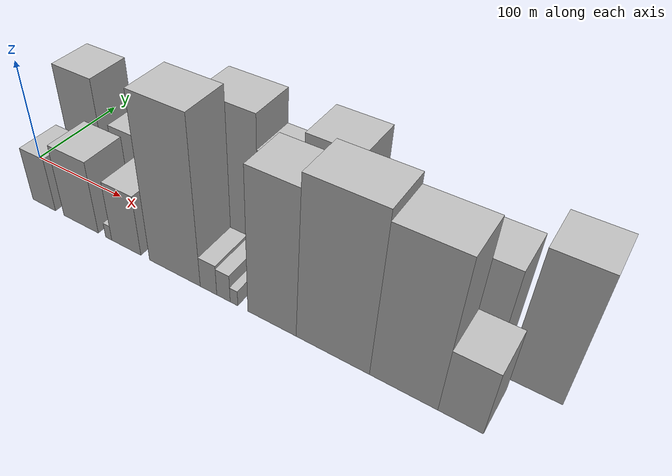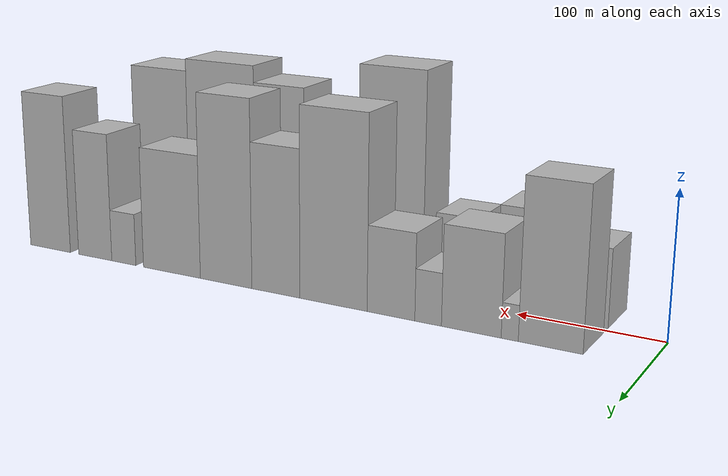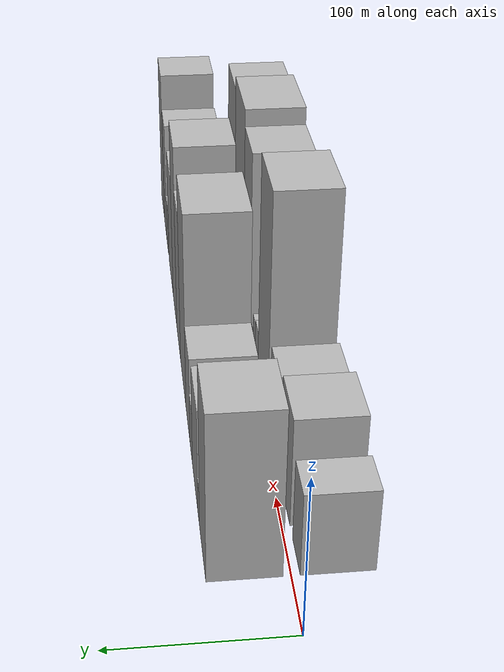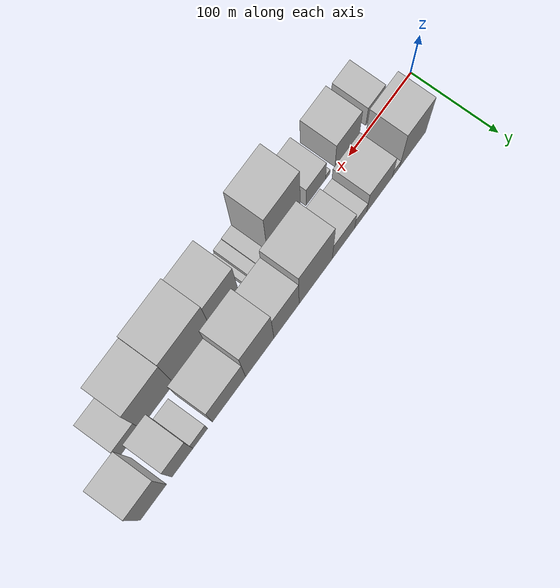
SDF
<sdf version="1.6">
 <world name="default">
  <scene>
   <sky><clouds><speed>12</speed></clouds></sky>
   <ambient>0.4 0.4 0.4 1</ambient>
   <background>0.7 0.7 0.7 1</background>
   <shadows>1</shadows>
  </scene>
  <gravity>0 0 -9.8066</gravity>
  <magnetic_field>6e-06 2.3e-05 -4.2e-05</magnetic_field>
  <physics default="0" name="default_physics" type="ode">
   <ode>
    <solver>
     <type>quick</type>
     <iters>10</iters>
     <sor>1.0</sor>
     <use_dynamic_moi_rescaling>0</use_dynamic_moi_rescaling>
    </solver>
    <constraints>
     <cfm>0</cfm>
     <erp>0.2</erp>
     <contact_max_correcting_vel>100</contact_max_correcting_vel>
     <contact_surface_layer>0.001</contact_surface_layer>
    </constraints>
   </ode>
   <max_step_size>0.004</max_step_size>
   <real_time_factor>1</real_time_factor>
   <real_time_update_rate>250</real_time_update_rate>
  </physics>
  <light name="sun" type="directional">
   <pose>0 0 10 0 0 0</pose>
   <diffuse>0.8 0.8 0.8 1</diffuse>
   <specular>0.2 0.2 0.2 1</specular>
   <attenuation>
    <range>1000</range>
    <constant>0.9</constant>
    <linear>0.01</linear>
    <quadratic>0.001</quadratic>
   </attenuation>
   <direction>-0.5 0.1 -0.9</direction>
  </light>
  <model name="building_1">
   <static>1</static>
   <pose>61.0393 24.5000 0 0.000000 0.000000 1.570796</pose>
   <link name="link">
    <pose>0 0 54.00 0 0 0</pose>
    <collision name="collision"><geometry><box><size>40.0000 42.0786 108.0000</size></box></geometry></collision>
    <visual name="visual">
     <cast_shadows>0</cast_shadows>
     <geometry><box><size>40.0000 42.0786 108.0000</size></box></geometry>
     <material>
      <script>
       <uri>model://HANNAS_wall/materials/scripts</uri>
       <uri>model://HANNAS_wall/materials/textures</uri>
       <name>vrc/HANNAS_wall</name>
      </script>
     </material>
    </visual>
   </link>
  </model>
  <model name="building_2">
   <static>1</static>
   <pose>87.7988 24.5000 0 0.000000 0.000000 1.570796</pose>
   <link name="link">
    <pose>0 0 12.00 0 0 0</pose>
    <collision name="collision"><geometry><box><size>40.0000 11.4404 24.0000</size></box></geometry></collision>
    <visual name="visual">
     <cast_shadows>0</cast_shadows>
     <geometry><box><size>40.0000 11.4404 24.0000</size></box></geometry>
     <material>
      <script>
       <uri>model://HANNAS_wall/materials/scripts</uri>
       <uri>model://HANNAS_wall/materials/textures</uri>
       <name>vrc/HANNAS_wall</name>
      </script>
     </material>
    </visual>
   </link>
  </model>
  <model name="building_3">
   <static>1</static>
   <pose>114.1051 24.5000 0 0.000000 0.000000 1.570796</pose>
   <link name="link">
    <pose>0 0 34.50 0 0 0</pose>
    <collision name="collision"><geometry><box><size>40.0000 41.1723 69.0000</size></box></geometry></collision>
    <visual name="visual">
     <cast_shadows>0</cast_shadows>
     <geometry><box><size>40.0000 41.1723 69.0000</size></box></geometry>
     <material>
      <script>
       <uri>model://HANNAS_wall/materials/scripts</uri>
       <uri>model://HANNAS_wall/materials/textures</uri>
       <name>vrc/HANNAS_wall</name>
      </script>
     </material>
    </visual>
   </link>
  </model>
  <model name="building_4">
   <static>1</static>
   <pose>144.1819 24.5000 0 0.000000 0.000000 1.570796</pose>
   <link name="link">
    <pose>0 0 18.00 0 0 0</pose>
    <collision name="collision"><geometry><box><size>40.0000 18.9814 36.0000</size></box></geometry></collision>
    <visual name="visual">
     <cast_shadows>0</cast_shadows>
     <geometry><box><size>40.0000 18.9814 36.0000</size></box></geometry>
     <material>
      <script>
       <uri>model://HANNAS_wall/materials/scripts</uri>
       <uri>model://HANNAS_wall/materials/textures</uri>
       <name>vrc/HANNAS_wall</name>
      </script>
     </material>
    </visual>
   </link>
  </model>
  <model name="building_5">
   <static>1</static>
   <pose>171.2053 24.5000 0 0.000000 0.000000 1.570796</pose>
   <link name="link">
    <pose>0 0 30.00 0 0 0</pose>
    <collision name="collision"><geometry><box><size>40.0000 35.0654 60.0000</size></box></geometry></collision>
    <visual name="visual">
     <cast_shadows>0</cast_shadows>
     <geometry><box><size>40.0000 35.0654 60.0000</size></box></geometry>
     <material>
      <script>
       <uri>model://HANNAS_wall/materials/scripts</uri>
       <uri>model://HANNAS_wall/materials/textures</uri>
       <name>vrc/HANNAS_wall</name>
      </script>
     </material>
    </visual>
   </link>
  </model>
  <model name="building_6">
   <static>1</static>
   <pose>214.6313 24.5000 0 0.000000 0.000000 1.570796</pose>
   <link name="link">
    <pose>0 0 67.50 0 0 0</pose>
    <collision name="collision"><geometry><box><size>40.0000 51.7867 135.0000</size></box></geometry></collision>
    <visual name="visual">
     <cast_shadows>0</cast_shadows>
     <geometry><box><size>40.0000 51.7867 135.0000</size></box></geometry>
     <material>
      <script>
       <uri>model://HANNAS_wall/materials/scripts</uri>
       <uri>model://HANNAS_wall/materials/textures</uri>
       <name>vrc/HANNAS_wall</name>
      </script>
     </material>
    </visual>
   </link>
  </model>
  <model name="building_7">
   <static>1</static>
   <pose>259.8785 24.5000 0 0.000000 0.000000 1.570796</pose>
   <link name="link">
    <pose>0 0 52.50 0 0 0</pose>
    <collision name="collision"><geometry><box><size>40.0000 38.7076 105.0000</size></box></geometry></collision>
    <visual name="visual">
     <cast_shadows>0</cast_shadows>
     <geometry><box><size>40.0000 38.7076 105.0000</size></box></geometry>
     <material>
      <script>
       <uri>model://HANNAS_wall/materials/scripts</uri>
       <uri>model://HANNAS_wall/materials/textures</uri>
       <name>vrc/HANNAS_wall</name>
      </script>
     </material>
    </visual>
   </link>
  </model>
  <model name="building_8">
   <static>1</static>
   <pose>300.9678 24.5000 0 0.000000 0.000000 1.570796</pose>
   <link name="link">
    <pose>0 0 67.50 0 0 0</pose>
    <collision name="collision"><geometry><box><size>40.0000 43.4711 135.0000</size></box></geometry></collision>
    <visual name="visual">
     <cast_shadows>0</cast_shadows>
     <geometry><box><size>40.0000 43.4711 135.0000</size></box></geometry>
     <material>
      <script>
       <uri>model://HANNAS_wall/materials/scripts</uri>
       <uri>model://HANNAS_wall/materials/textures</uri>
       <name>vrc/HANNAS_wall</name>
      </script>
     </material>
    </visual>
   </link>
  </model>
  <model name="building_9">
   <static>1</static>
   <pose>347.8488 24.5000 0 0.000000 0.000000 1.570796</pose>
   <link name="link">
    <pose>0 0 45.00 0 0 0</pose>
    <collision name="collision"><geometry><box><size>40.0000 50.2910 90.0000</size></box></geometry></collision>
    <visual name="visual">
     <cast_shadows>0</cast_shadows>
     <geometry><box><size>40.0000 50.2910 90.0000</size></box></geometry>
     <material>
      <script>
       <uri>model://HANNAS_wall/materials/scripts</uri>
       <uri>model://HANNAS_wall/materials/textures</uri>
       <name>vrc/HANNAS_wall</name>
      </script>
     </material>
    </visual>
   </link>
  </model>
  <model name="building_10">
   <static>1</static>
   <pose>391.0705 24.5000 0 0.000000 0.000000 1.570796</pose>
   <link name="link">
    <pose>0 0 19.50 0 0 0</pose>
    <collision name="collision"><geometry><box><size>40.0000 22.1524 39.0000</size></box></geometry></collision>
    <visual name="visual">
     <cast_shadows>0</cast_shadows>
     <geometry><box><size>40.0000 22.1524 39.0000</size></box></geometry>
     <material>
      <script>
       <uri>model://HANNAS_wall/materials/scripts</uri>
       <uri>model://HANNAS_wall/materials/textures</uri>
       <name>vrc/HANNAS_wall</name>
      </script>
     </material>
    </visual>
   </link>
  </model>
  <model name="building_11">
   <static>1</static>
   <pose>417.8447 24.5000 0 0.000000 0.000000 1.570796</pose>
   <link name="link">
    <pose>0 0 48.00 0 0 0</pose>
    <collision name="collision"><geometry><box><size>40.0000 31.3960 96.0000</size></box></geometry></collision>
    <visual name="visual">
     <cast_shadows>0</cast_shadows>
     <geometry><box><size>40.0000 31.3960 96.0000</size></box></geometry>
     <material>
      <script>
       <uri>model://HANNAS_wall/materials/scripts</uri>
       <uri>model://HANNAS_wall/materials/textures</uri>
       <name>vrc/HANNAS_wall</name>
      </script>
     </material>
    </visual>
   </link>
  </model>
  <model name="building_12">
   <static>1</static>
   <pose>461.0746 24.5000 0 0.000000 0.000000 1.570796</pose>
   <link name="link">
    <pose>0 0 60.00 0 0 0</pose>
    <collision name="collision"><geometry><box><size>40.0000 39.0637 120.0000</size></box></geometry></collision>
    <visual name="visual">
     <cast_shadows>0</cast_shadows>
     <geometry><box><size>40.0000 39.0637 120.0000</size></box></geometry>
     <material>
      <script>
       <uri>model://HANNAS_wall/materials/scripts</uri>
       <uri>model://HANNAS_wall/materials/textures</uri>
       <name>vrc/HANNAS_wall</name>
      </script>
     </material>
    </visual>
   </link>
  </model>
  <model name="building_13">
   <static>1</static>
   <pose>53.6402 -24.5000 0 0.000000 0.000000 1.570796</pose>
   <link name="link">
    <pose>0 0 27.00 0 0 0</pose>
    <collision name="collision"><geometry><box><size>40.0000 27.2803 54.0000</size></box></geometry></collision>
    <visual name="visual">
     <cast_shadows>0</cast_shadows>
     <geometry><box><size>40.0000 27.2803 54.0000</size></box></geometry>
     <material>
      <script>
       <uri>model://HANNAS_wall/materials/scripts</uri>
       <uri>model://HANNAS_wall/materials/textures</uri>
       <name>vrc/HANNAS_wall</name>
      </script>
     </material>
    </visual>
   </link>
  </model>
  <model name="building_14">
   <static>1</static>
   <pose>96.8965 -24.5000 0 0.000000 0.000000 1.570796</pose>
   <link name="link">
    <pose>0 0 36.00 0 0 0</pose>
    <collision name="collision"><geometry><box><size>40.0000 39.2323 72.0000</size></box></geometry></collision>
    <visual name="visual">
     <cast_shadows>0</cast_shadows>
     <geometry><box><size>40.0000 39.2323 72.0000</size></box></geometry>
     <material>
      <script>
       <uri>model://HANNAS_wall/materials/scripts</uri>
       <uri>model://HANNAS_wall/materials/textures</uri>
       <name>vrc/HANNAS_wall</name>
      </script>
     </material>
    </visual>
   </link>
  </model>
  <model name="building_15">
   <static>1</static>
   <pose>127.9105 -24.5000 0 0.000000 0.000000 1.570796</pose>
   <link name="link">
    <pose>0 0 7.50 0 0 0</pose>
    <collision name="collision"><geometry><box><size>40.0000 6.7958 15.0000</size></box></geometry></collision>
    <visual name="visual">
     <cast_shadows>0</cast_shadows>
     <geometry><box><size>40.0000 6.7958 15.0000</size></box></geometry>
     <material>
      <script>
       <uri>model://HANNAS_wall/materials/scripts</uri>
       <uri>model://HANNAS_wall/materials/textures</uri>
       <name>vrc/HANNAS_wall</name>
      </script>
     </material>
    </visual>
   </link>
  </model>
  <model name="building_16">
   <static>1</static>
   <pose>146.7955 -24.5000 0 0.000000 0.000000 1.570796</pose>
   <link name="link">
    <pose>0 0 30.00 0 0 0</pose>
    <collision name="collision"><geometry><box><size>40.0000 30.9742 60.0000</size></box></geometry></collision>
    <visual name="visual">
     <cast_shadows>0</cast_shadows>
     <geometry><box><size>40.0000 30.9742 60.0000</size></box></geometry>
     <material>
      <script>
       <uri>model://HANNAS_wall/materials/scripts</uri>
       <uri>model://HANNAS_wall/materials/textures</uri>
       <name>vrc/HANNAS_wall</name>
      </script>
     </material>
    </visual>
   </link>
  </model>
  <model name="building_17">
   <static>1</static>
   <pose>196.4315 -24.5000 0 0.000000 0.000000 1.570796</pose>
   <link name="link">
    <pose>0 0 78.00 0 0 0</pose>
    <collision name="collision"><geometry><box><size>40.0000 50.2978 156.0000</size></box></geometry></collision>
    <visual name="visual">
     <cast_shadows>0</cast_shadows>
     <geometry><box><size>40.0000 50.2978 156.0000</size></box></geometry>
     <material>
      <script>
       <uri>model://HANNAS_wall/materials/scripts</uri>
       <uri>model://HANNAS_wall/materials/textures</uri>
       <name>vrc/HANNAS_wall</name>
      </script>
     </material>
    </visual>
   </link>
  </model>
  <model name="building_18">
   <static>1</static>
   <pose>229.3445 -24.5000 0 0.000000 0.000000 1.570796</pose>
   <link name="link">
    <pose>0 0 15.00 0 0 0</pose>
    <collision name="collision"><geometry><box><size>40.0000 15.5283 30.0000</size></box></geometry></collision>
    <visual name="visual">
     <cast_shadows>0</cast_shadows>
     <geometry><box><size>40.0000 15.5283 30.0000</size></box></geometry>
     <material>
      <script>
       <uri>model://HANNAS_wall/materials/scripts</uri>
       <uri>model://HANNAS_wall/materials/textures</uri>
       <name>vrc/HANNAS_wall</name>
      </script>
     </material>
    </visual>
   </link>
  </model>
  <model name="building_19">
   <static>1</static>
   <pose>243.2892 -24.5000 0 0.000000 0.000000 1.570796</pose>
   <link name="link">
    <pose>0 0 13.50 0 0 0</pose>
    <collision name="collision"><geometry><box><size>40.0000 12.3609 27.0000</size></box></geometry></collision>
    <visual name="visual">
     <cast_shadows>0</cast_shadows>
     <geometry><box><size>40.0000 12.3609 27.0000</size></box></geometry>
     <material>
      <script>
       <uri>model://HANNAS_wall/materials/scripts</uri>
       <uri>model://HANNAS_wall/materials/textures</uri>
       <name>vrc/HANNAS_wall</name>
      </script>
     </material>
    </visual>
   </link>
  </model>
  <model name="building_20">
   <static>1</static>
   <pose>252.9494 -24.5000 0 0.000000 0.000000 1.570796</pose>
   <link name="link">
    <pose>0 0 7.50 0 0 0</pose>
    <collision name="collision"><geometry><box><size>40.0000 6.9595 15.0000</size></box></geometry></collision>
    <visual name="visual">
     <cast_shadows>0</cast_shadows>
     <geometry><box><size>40.0000 6.9595 15.0000</size></box></geometry>
     <material>
      <script>
       <uri>model://HANNAS_wall/materials/scripts</uri>
       <uri>model://HANNAS_wall/materials/textures</uri>
       <name>vrc/HANNAS_wall</name>
      </script>
     </material>
    </visual>
   </link>
  </model>
  <model name="building_21">
   <static>1</static>
   <pose>286.2668 -24.5000 0 0.000000 0.000000 1.570796</pose>
   <link name="link">
    <pose>0 0 67.50 0 0 0</pose>
    <collision name="collision"><geometry><box><size>40.0000 41.6752 135.0000</size></box></geometry></collision>
    <visual name="visual">
     <cast_shadows>0</cast_shadows>
     <geometry><box><size>40.0000 41.6752 135.0000</size></box></geometry>
     <material>
      <script>
       <uri>model://HANNAS_wall/materials/scripts</uri>
       <uri>model://HANNAS_wall/materials/textures</uri>
       <name>vrc/HANNAS_wall</name>
      </script>
     </material>
    </visual>
   </link>
  </model>
  <model name="building_22">
   <static>1</static>
   <pose>336.2884 -24.5000 0 0.000000 0.000000 1.570796</pose>
   <link name="link">
    <pose>0 0 73.50 0 0 0</pose>
    <collision name="collision"><geometry><box><size>40.0000 58.3681 147.0000</size></box></geometry></collision>
    <visual name="visual">
     <cast_shadows>0</cast_shadows>
     <geometry><box><size>40.0000 58.3681 147.0000</size></box></geometry>
     <material>
      <script>
       <uri>model://HANNAS_wall/materials/scripts</uri>
       <uri>model://HANNAS_wall/materials/textures</uri>
       <name>vrc/HANNAS_wall</name>
      </script>
     </material>
    </visual>
   </link>
  </model>
  <model name="building_23">
   <static>1</static>
   <pose>390.3458 -24.5000 0 0.000000 0.000000 1.570796</pose>
   <link name="link">
    <pose>0 0 69.00 0 0 0</pose>
    <collision name="collision"><geometry><box><size>40.0000 49.7467 138.0000</size></box></geometry></collision>
    <visual name="visual">
     <cast_shadows>0</cast_shadows>
     <geometry><box><size>40.0000 49.7467 138.0000</size></box></geometry>
     <material>
      <script>
       <uri>model://HANNAS_wall/materials/scripts</uri>
       <uri>model://HANNAS_wall/materials/textures</uri>
       <name>vrc/HANNAS_wall</name>
      </script>
     </material>
    </visual>
   </link>
  </model>
  <model name="building_24">
   <static>1</static>
   <pose>430.6834 -24.5000 0 0.000000 0.000000 1.570796</pose>
   <link name="link">
    <pose>0 0 30.00 0 0 0</pose>
    <collision name="collision"><geometry><box><size>40.0000 30.9284 60.0000</size></box></geometry></collision>
    <visual name="visual">
     <cast_shadows>0</cast_shadows>
     <geometry><box><size>40.0000 30.9284 60.0000</size></box></geometry>
     <material>
      <script>
       <uri>model://HANNAS_wall/materials/scripts</uri>
       <uri>model://HANNAS_wall/materials/textures</uri>
       <name>vrc/HANNAS_wall</name>
      </script>
     </material>
    </visual>
   </link>
  </model>
 </world>
</sdf>
